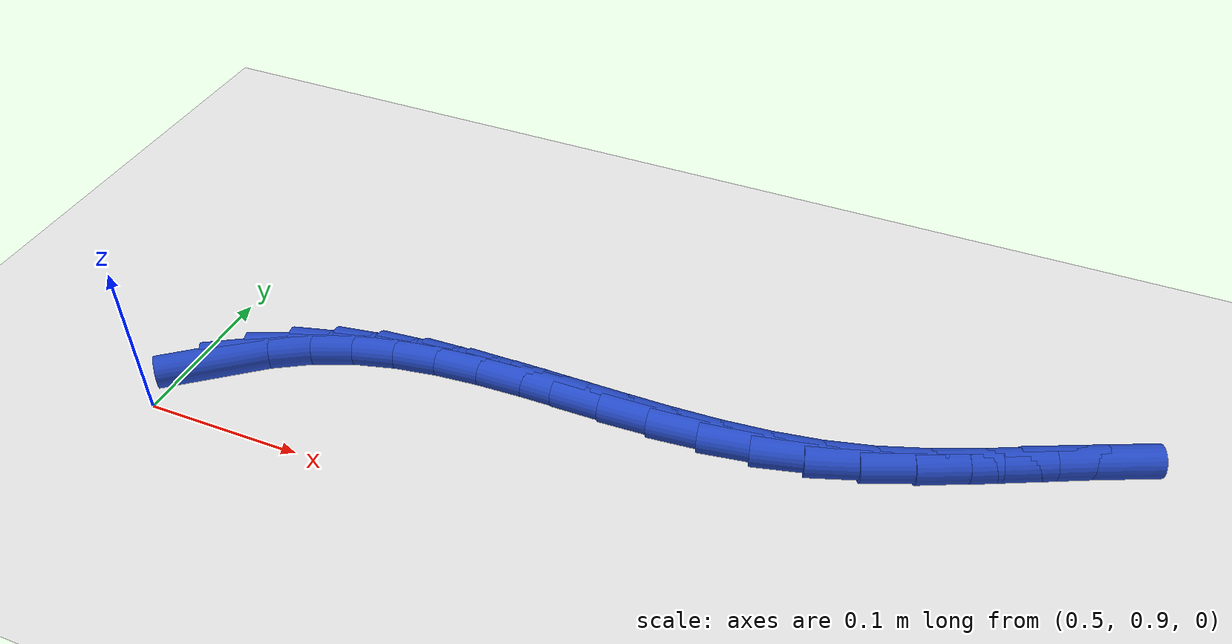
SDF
<sdf version="1.6">
 <world name="default">
  <model name="ground_plane">
   <static>1</static>
   <link name="link">
    <collision name="collision">
     <geometry><plane><normal>0 0 1</normal><size>100 100</size></plane></geometry>
     <surface><friction><ode><mu>100</mu><mu2>50</mu2></ode></friction></surface>
    </collision>
    <visual name="visual">
     <cast_shadows>0</cast_shadows>
     <geometry><plane><normal>0 0 1</normal><size>100 100</size></plane></geometry>
     <material>
      <script><uri>file://media/materials/scripts/gazebo.material</uri><name>Gazebo/WhiteGlow</name></script>
     </material>
    </visual>
   </link>
  </model>
  <model name="line">
   <link name="link_38">
    <pose>0.5231040105787488 0.9423455319940099 0.01 0 1.57 0.6707489983790816</pose>
    <collision name="collision">
     <geometry><cylinder><radius>0.01</radius><length>0.08</length></cylinder></geometry>
    </collision>
    <visual name="visual">
     <material>
      <script><name>Gazebo/Blue</name><uri>file://media/materials/scripts/gazebo.material</uri></script>
     </material>
     <geometry><cylinder><radius>0.01</radius><length>0.08</length></cylinder></geometry>
    </visual>
   </link>
   <link name="link_39">
    <pose>0.5442640815948264 0.9591354985751186 0.01 0 1.57 0.541764548540065</pose>
    <collision name="collision">
     <geometry><cylinder><radius>0.01</radius><length>0.08</length></cylinder></geometry>
    </collision>
    <visual name="visual">
     <material>
      <script><name>Gazebo/Blue</name><uri>file://media/materials/scripts/gazebo.material</uri></script>
     </material>
     <geometry><cylinder><radius>0.01</radius><length>0.08</length></cylinder></geometry>
    </visual>
   </link>
   <link name="link_40">
    <pose>0.5668707363283675 0.9727408784175975 0.01 0 1.57 0.3934134070438369</pose>
    <collision name="collision">
     <geometry><cylinder><radius>0.01</radius><length>0.08</length></cylinder></geometry>
    </collision>
    <visual name="visual">
     <material>
      <script><name>Gazebo/Blue</name><uri>file://media/materials/scripts/gazebo.material</uri></script>
     </material>
     <geometry><cylinder><radius>0.01</radius><length>0.08</length></cylinder></geometry>
    </visual>
   </link>
   <link name="link_41">
    <pose>0.5911152631262181 0.9828035861006209 0.01 0 1.57 0.26153164379875293</pose>
    <collision name="collision">
     <geometry><cylinder><radius>0.01</radius><length>0.08</length></cylinder></geometry>
    </collision>
    <visual name="visual">
     <material>
      <script><name>Gazebo/Blue</name><uri>file://media/materials/scripts/gazebo.material</uri></script>
     </material>
     <geometry><cylinder><radius>0.01</radius><length>0.08</length></cylinder></geometry>
    </visual>
   </link>
   <link name="link_42">
    <pose>0.6168777942477184 0.9896992430395262 0.01 0 1.57 0.15793028334962045</pose>
    <collision name="collision">
     <geometry><cylinder><radius>0.01</radius><length>0.08</length></cylinder></geometry>
    </collision>
    <visual name="visual">
     <material>
      <script><name>Gazebo/Blue</name><uri>file://media/materials/scripts/gazebo.material</uri></script>
     </material>
     <geometry><cylinder><radius>0.01</radius><length>0.08</length></cylinder></geometry>
    </visual>
   </link>
   <link name="link_43">
    <pose>0.6439505542083239 0.9940107573306136 0.01 0 1.57 0.08181431172003366</pose>
    <collision name="collision">
     <geometry><cylinder><radius>0.01</radius><length>0.08</length></cylinder></geometry>
    </collision>
    <visual name="visual">
     <material>
      <script><name>Gazebo/Blue</name><uri>file://media/materials/scripts/gazebo.material</uri></script>
     </material>
     <geometry><cylinder><radius>0.01</radius><length>0.08</length></cylinder></geometry>
    </visual>
   </link>
   <link name="link_44">
    <pose>0.672125762212844 0.9963210495926981 0.01 0 1.57 0.030674746850218437</pose>
    <collision name="collision">
     <geometry><cylinder><radius>0.01</radius><length>0.08</length></cylinder></geometry>
    </collision>
    <visual name="visual">
     <material>
      <script><name>Gazebo/Blue</name><uri>file://media/materials/scripts/gazebo.material</uri></script>
     </material>
     <geometry><cylinder><radius>0.01</radius><length>0.08</length></cylinder></geometry>
    </visual>
   </link>
   <link name="link_45">
    <pose>0.7011956374660886 0.9972130404445956 0.01 0 1.57 0.0019024244905861557</pose>
    <collision name="collision">
     <geometry><cylinder><radius>0.01</radius><length>0.08</length></cylinder></geometry>
    </collision>
    <visual name="visual">
     <material>
      <script><name>Gazebo/Blue</name><uri>file://media/materials/scripts/gazebo.material</uri></script>
     </material>
     <geometry><cylinder><radius>0.01</radius><length>0.08</length></cylinder></geometry>
    </visual>
   </link>
   <link name="link_46">
    <pose>0.7309523991728674 0.9972696505051218 0.01 0 1.57 -0.006477319491099967</pose>
    <collision name="collision">
     <geometry><cylinder><radius>0.01</radius><length>0.08</length></cylinder></geometry>
    </collision>
    <visual name="visual">
     <material>
      <script><name>Gazebo/Blue</name><uri>file://media/materials/scripts/gazebo.material</uri></script>
     </material>
     <geometry><cylinder><radius>0.01</radius><length>0.08</length></cylinder></geometry>
    </visual>
   </link>
   <link name="link_47">
    <pose>0.7611882665379898 0.9970738003930923 0.01 0 1.57 0.004412384451497344</pose>
    <collision name="collision">
     <geometry><cylinder><radius>0.01</radius><length>0.08</length></cylinder></geometry>
    </collision>
    <visual name="visual">
     <material>
      <script><name>Gazebo/Blue</name><uri>file://media/materials/scripts/gazebo.material</uri></script>
     </material>
     <geometry><cylinder><radius>0.01</radius><length>0.08</length></cylinder></geometry>
    </visual>
   </link>
   <link name="link_48">
    <pose>0.7916954587662657 0.9972084107273227 0.01 0 1.57 0.034267449527861454</pose>
    <collision name="collision">
     <geometry><cylinder><radius>0.01</radius><length>0.08</length></cylinder></geometry>
    </collision>
    <visual name="visual">
     <material>
      <script><name>Gazebo/Blue</name><uri>file://media/materials/scripts/gazebo.material</uri></script>
     </material>
     <geometry><cylinder><radius>0.01</radius><length>0.08</length></cylinder></geometry>
    </visual>
   </link>
   <link name="link_49">
    <pose>0.8222661950625043 0.9982564021266284 0.01 0 1.57 0.08342686745658927</pose>
    <collision name="collision">
     <geometry><cylinder><radius>0.01</radius><length>0.08</length></cylinder></geometry>
    </collision>
    <visual name="visual">
     <material>
      <script><name>Gazebo/Blue</name><uri>file://media/materials/scripts/gazebo.material</uri></script>
     </material>
     <geometry><cylinder><radius>0.01</radius><length>0.08</length></cylinder></geometry>
    </visual>
   </link>
   <link name="link_50">
    <pose>0.8526926946315159 1.0008006952098252 0.01 0 1.57 0.15254122638977816</pose>
    <collision name="collision">
     <geometry><cylinder><radius>0.01</radius><length>0.08</length></cylinder></geometry>
    </collision>
    <visual name="visual">
     <material>
      <script><name>Gazebo/Blue</name><uri>file://media/materials/scripts/gazebo.material</uri></script>
     </material>
     <geometry><cylinder><radius>0.01</radius><length>0.08</length></cylinder></geometry>
    </visual>
   </link>
   <link name="link_51">
    <pose>0.8827671766781098 1.0054242105957287 0.01 0 1.57 0.24185025175334954</pose>
    <collision name="collision">
     <geometry><cylinder><radius>0.01</radius><length>0.08</length></cylinder></geometry>
    </collision>
    <visual name="visual">
     <material>
      <script><name>Gazebo/Blue</name><uri>file://media/materials/scripts/gazebo.material</uri></script>
     </material>
     <geometry><cylinder><radius>0.01</radius><length>0.08</length></cylinder></geometry>
    </visual>
   </link>
   <link name="link_52">
    <pose>0.9122827681071964 1.012705076835079 0.01 0 1.57 0.3345268677731419</pose>
    <collision name="collision">
     <geometry><cylinder><radius>0.01</radius><length>0.08</length></cylinder></geometry>
    </collision>
    <visual name="visual">
     <material>
      <script><name>Gazebo/Blue</name><uri>file://media/materials/scripts/gazebo.material</uri></script>
     </material>
     <geometry><cylinder><radius>0.01</radius><length>0.08</length></cylinder></geometry>
    </visual>
   </link>
   <link name="link_53">
    <pose>0.9411255720701204 1.0227305681733172 0.01 0 1.57 0.4004153501430796</pose>
    <collision name="collision">
     <geometry><cylinder><radius>0.01</radius><length>0.08</length></cylinder></geometry>
    </collision>
    <visual name="visual">
     <material>
      <script><name>Gazebo/Blue</name><uri>file://media/materials/scripts/gazebo.material</uri></script>
     </material>
     <geometry><cylinder><radius>0.01</radius><length>0.08</length></cylinder></geometry>
    </visual>
   </link>
   <link name="link_54">
    <pose>0.9693538428466659 1.0346791125021453 0.01 0 1.57 0.43749431682647677</pose>
    <collision name="collision">
     <geometry><cylinder><radius>0.01</radius><length>0.08</length></cylinder></geometry>
    </collision>
    <visual name="visual">
     <material>
      <script><name>Gazebo/Blue</name><uri>file://media/materials/scripts/gazebo.material</uri></script>
     </material>
     <geometry><cylinder><radius>0.01</radius><length>0.08</length></cylinder></geometry>
    </visual>
   </link>
   <link name="link_55">
    <pose>0.9970444868870406 1.0476306663455053 0.01 0 1.57 0.4464495881723244</pose>
    <collision name="collision">
     <geometry><cylinder><radius>0.01</radius><length>0.08</length></cylinder></geometry>
    </collision>
    <visual name="visual">
     <material>
      <script><name>Gazebo/Blue</name><uri>file://media/materials/scripts/gazebo.material</uri></script>
     </material>
     <geometry><cylinder><radius>0.01</radius><length>0.08</length></cylinder></geometry>
    </visual>
   </link>
   <link name="link_56">
    <pose>1.0242744106414514 1.0606651862273395 0.01 0 1.57 0.4264627902786795</pose>
    <collision name="collision">
     <geometry><cylinder><radius>0.01</radius><length>0.08</length></cylinder></geometry>
    </collision>
    <visual name="visual">
     <material>
      <script><name>Gazebo/Blue</name><uri>file://media/materials/scripts/gazebo.material</uri></script>
     </material>
     <geometry><cylinder><radius>0.01</radius><length>0.08</length></cylinder></geometry>
    </visual>
   </link>
  </model>
 </world>
</sdf>
